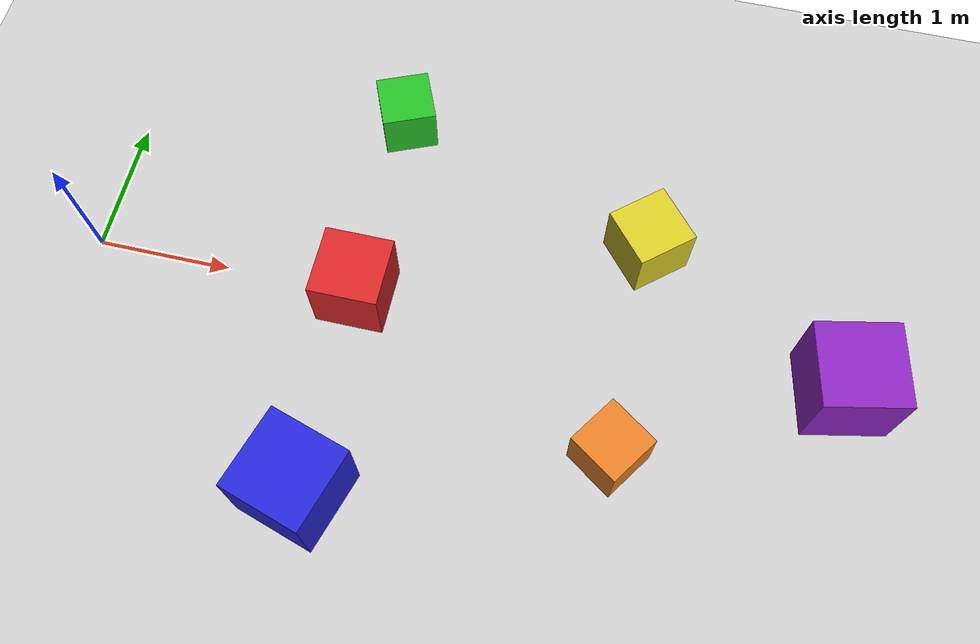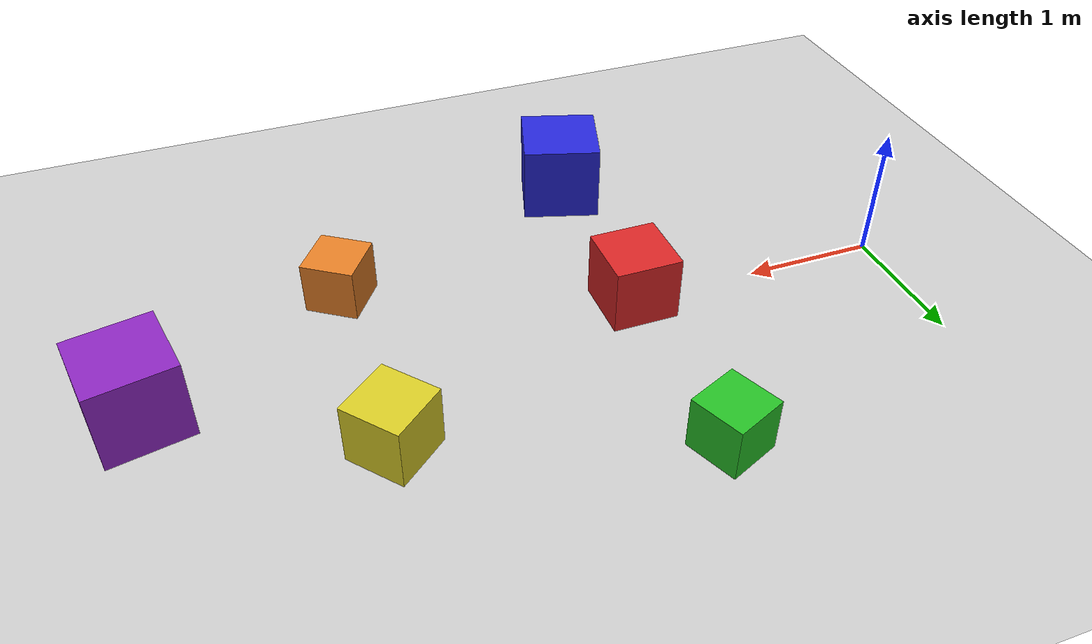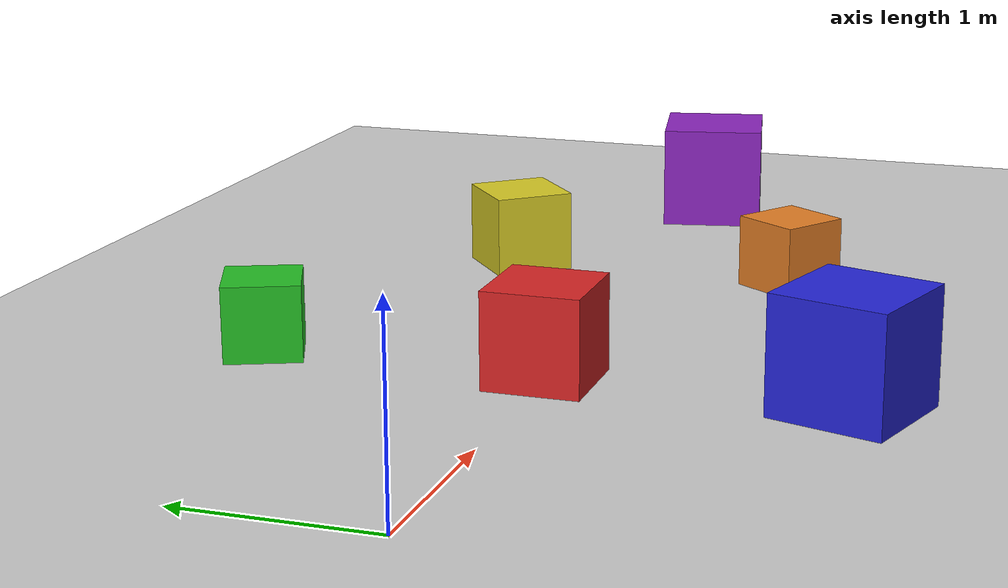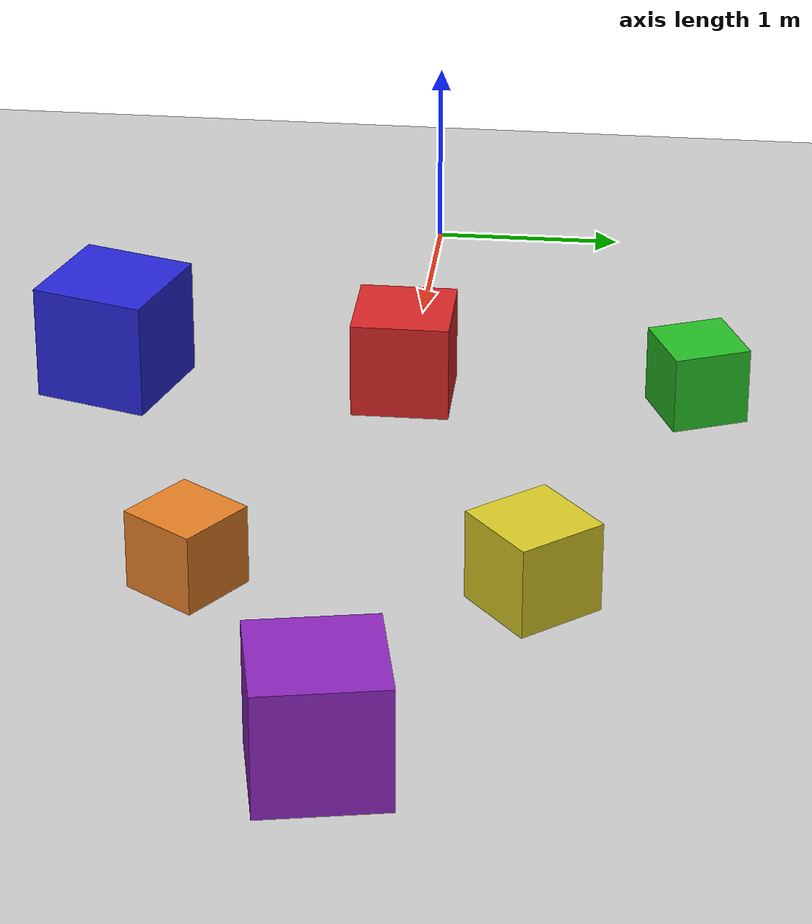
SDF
<?xml version="1.0" ?>
<sdf version="1.8">
  <world name="square_world">
    <physics name="default_physics" type="ode">
      <max_step_size>0.001</max_step_size>
      <real_time_factor>1.0</real_time_factor>
      <real_time_update_rate>1000</real_time_update_rate>
      <ode>
        <solver>
          <type>quick</type>
          <iters>50</iters>
        </solver>
      </ode>
    </physics>
    <gravity>0 0 -9.81</gravity>

    <scene>
      <ambient>0.4 0.4 0.4 1</ambient>
      <background>0.7 0.7 0.7 1</background>
    </scene>

    <light type="directional" name="sun">
      <cast_shadows>true</cast_shadows>
      <pose>0 0 10 0 0 0</pose>
      <diffuse>0.8 0.8 0.8 1</diffuse>
      <specular>0.2 0.2 0.2 1</specular>
      <direction>-0.5 0.1 -0.9</direction>
    </light>

    <plugin filename="gz-sim-physics-system" name="gz::sim::systems::Physics"/>
    <plugin filename="gz-sim-scene-broadcaster-system" name="gz::sim::systems::SceneBroadcaster"/>
    <plugin filename="gz-sim-sensors-system" name="gz::sim::systems::Sensors">
      <render_engine>ogre2</render_engine>
    </plugin>
    <plugin filename="gz-sim-contact-system" name="gz::sim::systems::Contact"/>
    <plugin filename="gz-sim-user-commands-system" name="gz::sim::systems::UserCommands"/>

    <model name="ground_plane">
      <static>true</static>
      <link name="link">
        <collision name="collision">
          <geometry><plane><normal>0 0 1</normal><size>100 100</size></plane></geometry>
        </collision>
        <visual name="visual">
          <geometry><plane><normal>0 0 1</normal><size>100 100</size></plane></geometry>
          <material>
            <ambient>0.8 0.8 0.8 1</ambient>
            <diffuse>0.8 0.8 0.8 1</diffuse>
          </material>
        </visual>
      </link>
    </model>

    <model name="box_red">
      <static>true</static>
      <pose>2 0 0.25 0 0 0</pose>
      <link name="link">
        <collision name="collision"><geometry><box><size>0.5 0.5 0.5</size></box></geometry></collision>
        <visual name="visual">
          <geometry><box><size>0.5 0.5 0.5</size></box></geometry>
          <material><ambient>0.8 0.1 0.1 1</ambient><diffuse>0.85 0.15 0.15 1</diffuse></material>
        </visual>
      </link>
    </model>

    <model name="box_green">
      <static>true</static>
      <pose>2 1.5 0.2 0 0 0.4</pose>
      <link name="link">
        <collision name="collision"><geometry><box><size>0.4 0.4 0.4</size></box></geometry></collision>
        <visual name="visual">
          <geometry><box><size>0.4 0.4 0.4</size></box></geometry>
          <material><ambient>0.1 0.7 0.1 1</ambient><diffuse>0.15 0.75 0.15 1</diffuse></material>
        </visual>
      </link>
    </model>

    <model name="box_blue">
      <static>true</static>
      <pose>2 -1.5 0.3 0 0 -0.3</pose>
      <link name="link">
        <collision name="collision"><geometry><box><size>0.6 0.6 0.6</size></box></geometry></collision>
        <visual name="visual">
          <geometry><box><size>0.6 0.6 0.6</size></box></geometry>
          <material><ambient>0.1 0.1 0.8 1</ambient><diffuse>0.15 0.15 0.85 1</diffuse></material>
        </visual>
      </link>
    </model>

    <model name="box_yellow">
      <static>true</static>
      <pose>4 0.8 0.225 0 0 0.7</pose>
      <link name="link">
        <collision name="collision"><geometry><box><size>0.45 0.45 0.45</size></box></geometry></collision>
        <visual name="visual">
          <geometry><box><size>0.45 0.45 0.45</size></box></geometry>
          <material><ambient>0.8 0.75 0.1 1</ambient><diffuse>0.85 0.8 0.15 1</diffuse></material>
        </visual>
      </link>
    </model>

    <model name="box_orange">
      <static>true</static>
      <pose>4 -0.8 0.2 0 0 -0.6</pose>
      <link name="link">
        <collision name="collision"><geometry><box><size>0.4 0.4 0.4</size></box></geometry></collision>
        <visual name="visual">
          <geometry><box><size>0.4 0.4 0.4</size></box></geometry>
          <material><ambient>0.85 0.45 0.1 1</ambient><diffuse>0.9 0.5 0.15 1</diffuse></material>
        </visual>
      </link>
    </model>

    <model name="box_purple">
      <static>true</static>
      <pose>5.5 0 0.3 0 0 0.2</pose>
      <link name="link">
        <collision name="collision"><geometry><box><size>0.6 0.6 0.6</size></box></geometry></collision>
        <visual name="visual">
          <geometry><box><size>0.6 0.6 0.6</size></box></geometry>
          <material><ambient>0.5 0.1 0.7 1</ambient><diffuse>0.55 0.15 0.75 1</diffuse></material>
        </visual>
      </link>
    </model>

  </world>
</sdf>
